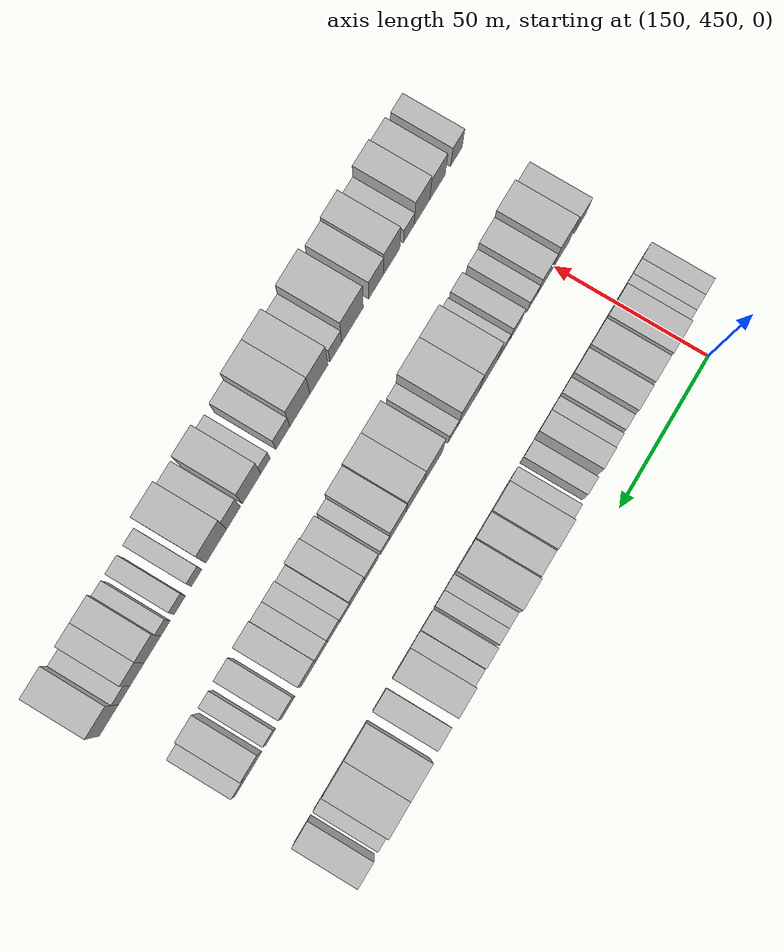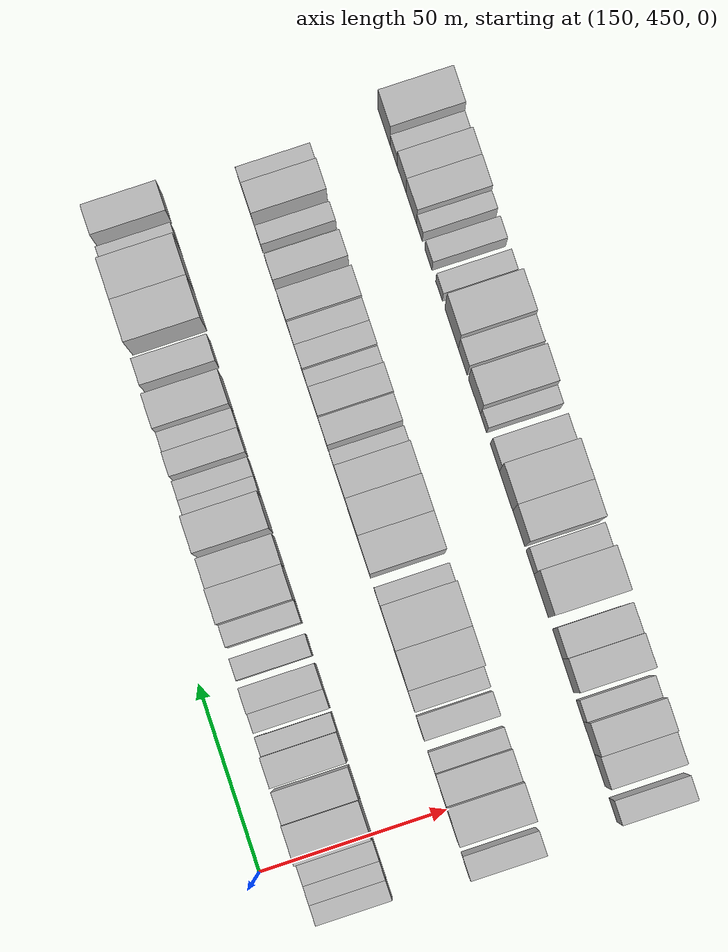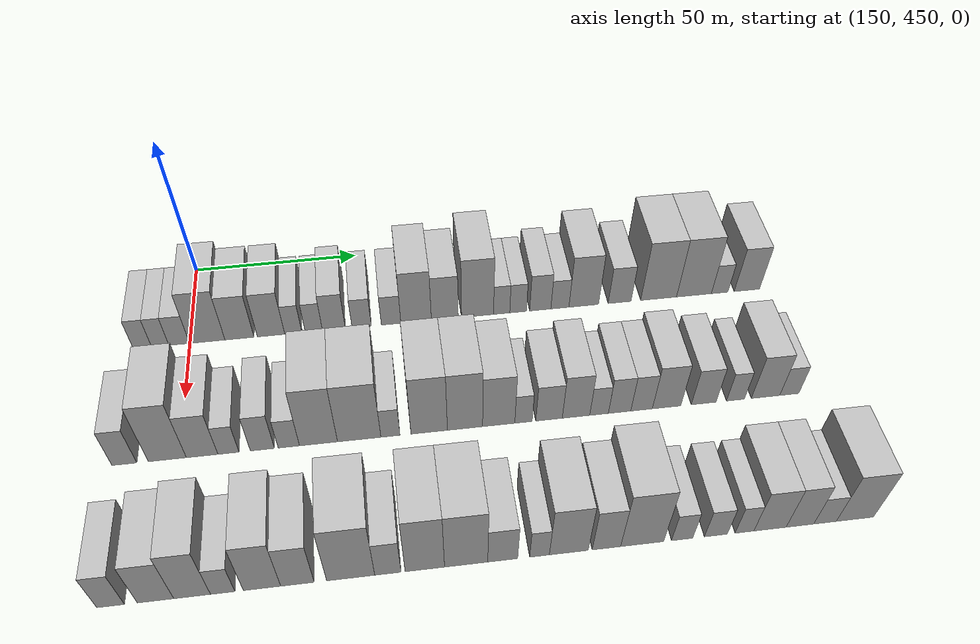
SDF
<sdf version="1.6">
 <world name="default">
  <model name="building_527">
   <static>1</static>
   <pose>170.0000 436.3362 0 0.000000 0.000000 0.000000</pose>
   <link name="link">
    <pose>0 0 6.00 0 0 0</pose>
    <collision name="collision"><geometry><box><size>20.0000 5.2763 12.0000</size></box></geometry></collision>
    <visual name="visual">
     <cast_shadows>0</cast_shadows>
     <geometry><box><size>20.0000 5.2763 12.0000</size></box></geometry>
     <material>
      <script>
       <uri>model://HANNAS_wall/materials/scripts</uri>
       <uri>model://HANNAS_wall/materials/textures</uri>
       <name>vrc/HANNAS_wall</name>
      </script>
     </material>
    </visual>
   </link>
  </model>
  <model name="building_528">
   <static>1</static>
   <pose>170.0000 441.4652 0 0.000000 0.000000 0.000000</pose>
   <link name="link">
    <pose>0 0 6.00 0 0 0</pose>
    <collision name="collision"><geometry><box><size>20.0000 4.9817 12.0000</size></box></geometry></collision>
    <visual name="visual">
     <cast_shadows>0</cast_shadows>
     <geometry><box><size>20.0000 4.9817 12.0000</size></box></geometry>
     <material>
      <script>
       <uri>model://HANNAS_wall/materials/scripts</uri>
       <uri>model://HANNAS_wall/materials/textures</uri>
       <name>vrc/HANNAS_wall</name>
      </script>
     </material>
    </visual>
   </link>
  </model>
  <model name="building_529">
   <static>1</static>
   <pose>170.0000 446.9456 0 0.000000 0.000000 0.000000</pose>
   <link name="link">
    <pose>0 0 6.00 0 0 0</pose>
    <collision name="collision"><geometry><box><size>20.0000 5.9792 12.0000</size></box></geometry></collision>
    <visual name="visual">
     <cast_shadows>0</cast_shadows>
     <geometry><box><size>20.0000 5.9792 12.0000</size></box></geometry>
     <material>
      <script>
       <uri>model://HANNAS_wall/materials/scripts</uri>
       <uri>model://HANNAS_wall/materials/textures</uri>
       <name>vrc/HANNAS_wall</name>
      </script>
     </material>
    </visual>
   </link>
  </model>
  <model name="building_530">
   <static>1</static>
   <pose>170.0000 455.0652 0 0.000000 0.000000 0.000000</pose>
   <link name="link">
    <pose>0 0 10.50 0 0 0</pose>
    <collision name="collision"><geometry><box><size>20.0000 10.2600 21.0000</size></box></geometry></collision>
    <visual name="visual">
     <cast_shadows>0</cast_shadows>
     <geometry><box><size>20.0000 10.2600 21.0000</size></box></geometry>
     <material>
      <script>
       <uri>model://HANNAS_wall/materials/scripts</uri>
       <uri>model://HANNAS_wall/materials/textures</uri>
       <name>vrc/HANNAS_wall</name>
      </script>
     </material>
    </visual>
   </link>
  </model>
  <model name="building_531">
   <static>1</static>
   <pose>170.0000 464.4266 0 0.000000 0.000000 0.000000</pose>
   <link name="link">
    <pose>0 0 9.00 0 0 0</pose>
    <collision name="collision"><geometry><box><size>20.0000 8.4628 18.0000</size></box></geometry></collision>
    <visual name="visual">
     <cast_shadows>0</cast_shadows>
     <geometry><box><size>20.0000 8.4628 18.0000</size></box></geometry>
     <material>
      <script>
       <uri>model://HANNAS_wall/materials/scripts</uri>
       <uri>model://HANNAS_wall/materials/textures</uri>
       <name>vrc/HANNAS_wall</name>
      </script>
     </material>
    </visual>
   </link>
  </model>
  <model name="building_532">
   <static>1</static>
   <pose>170.0000 473.6590 0 0.000000 0.000000 0.000000</pose>
   <link name="link">
    <pose>0 0 9.00 0 0 0</pose>
    <collision name="collision"><geometry><box><size>20.0000 8.0020 18.0000</size></box></geometry></collision>
    <visual name="visual">
     <cast_shadows>0</cast_shadows>
     <geometry><box><size>20.0000 8.0020 18.0000</size></box></geometry>
     <material>
      <script>
       <uri>model://HANNAS_wall/materials/scripts</uri>
       <uri>model://HANNAS_wall/materials/textures</uri>
       <name>vrc/HANNAS_wall</name>
      </script>
     </material>
    </visual>
   </link>
  </model>
  <model name="building_533">
   <static>1</static>
   <pose>170.0000 480.1822 0 0.000000 0.000000 0.000000</pose>
   <link name="link">
    <pose>0 0 6.00 0 0 0</pose>
    <collision name="collision"><geometry><box><size>20.0000 5.0445 12.0000</size></box></geometry></collision>
    <visual name="visual">
     <cast_shadows>0</cast_shadows>
     <geometry><box><size>20.0000 5.0445 12.0000</size></box></geometry>
     <material>
      <script>
       <uri>model://HANNAS_wall/materials/scripts</uri>
       <uri>model://HANNAS_wall/materials/textures</uri>
       <name>vrc/HANNAS_wall</name>
      </script>
     </material>
    </visual>
   </link>
  </model>
  <model name="building_534">
   <static>1</static>
   <pose>170.0000 486.2465 0 0.000000 0.000000 0.000000</pose>
   <link name="link">
    <pose>0 0 6.00 0 0 0</pose>
    <collision name="collision"><geometry><box><size>20.0000 5.0841 12.0000</size></box></geometry></collision>
    <visual name="visual">
     <cast_shadows>0</cast_shadows>
     <geometry><box><size>20.0000 5.0841 12.0000</size></box></geometry>
     <material>
      <script>
       <uri>model://HANNAS_wall/materials/scripts</uri>
       <uri>model://HANNAS_wall/materials/textures</uri>
       <name>vrc/HANNAS_wall</name>
      </script>
     </material>
    </visual>
   </link>
  </model>
  <model name="building_535">
   <static>1</static>
   <pose>170.0000 492.1793 0 0.000000 0.000000 0.000000</pose>
   <link name="link">
    <pose>0 0 7.50 0 0 0</pose>
    <collision name="collision"><geometry><box><size>20.0000 6.7814 15.0000</size></box></geometry></collision>
    <visual name="visual">
     <cast_shadows>0</cast_shadows>
     <geometry><box><size>20.0000 6.7814 15.0000</size></box></geometry>
     <material>
      <script>
       <uri>model://HANNAS_wall/materials/scripts</uri>
       <uri>model://HANNAS_wall/materials/textures</uri>
       <name>vrc/HANNAS_wall</name>
      </script>
     </material>
    </visual>
   </link>
  </model>
  <model name="building_536">
   <static>1</static>
   <pose>170.0000 500.4298 0 0.000000 0.000000 0.000000</pose>
   <link name="link">
    <pose>0 0 6.00 0 0 0</pose>
    <collision name="collision"><geometry><box><size>20.0000 5.7196 12.0000</size></box></geometry></collision>
    <visual name="visual">
     <cast_shadows>0</cast_shadows>
     <geometry><box><size>20.0000 5.7196 12.0000</size></box></geometry>
     <material>
      <script>
       <uri>model://HANNAS_wall/materials/scripts</uri>
       <uri>model://HANNAS_wall/materials/textures</uri>
       <name>vrc/HANNAS_wall</name>
      </script>
     </material>
    </visual>
   </link>
  </model>
  <model name="building_537">
   <static>1</static>
   <pose>170.0000 509.2075 0 0.000000 0.000000 0.000000</pose>
   <link name="link">
    <pose>0 0 6.00 0 0 0</pose>
    <collision name="collision"><geometry><box><size>20.0000 5.8358 12.0000</size></box></geometry></collision>
    <visual name="visual">
     <cast_shadows>0</cast_shadows>
     <geometry><box><size>20.0000 5.8358 12.0000</size></box></geometry>
     <material>
      <script>
       <uri>model://HANNAS_wall/materials/scripts</uri>
       <uri>model://HANNAS_wall/materials/textures</uri>
       <name>vrc/HANNAS_wall</name>
      </script>
     </material>
    </visual>
   </link>
  </model>
  <model name="building_538">
   <static>1</static>
   <pose>170.0000 516.7070 0 0.000000 0.000000 0.000000</pose>
   <link name="link">
    <pose>0 0 10.50 0 0 0</pose>
    <collision name="collision"><geometry><box><size>20.0000 9.1632 21.0000</size></box></geometry></collision>
    <visual name="visual">
     <cast_shadows>0</cast_shadows>
     <geometry><box><size>20.0000 9.1632 21.0000</size></box></geometry>
     <material>
      <script>
       <uri>model://HANNAS_wall/materials/scripts</uri>
       <uri>model://HANNAS_wall/materials/textures</uri>
       <name>vrc/HANNAS_wall</name>
      </script>
     </material>
    </visual>
   </link>
  </model>
  <model name="building_539">
   <static>1</static>
   <pose>170.0000 525.3419 0 0.000000 0.000000 0.000000</pose>
   <link name="link">
    <pose>0 0 9.00 0 0 0</pose>
    <collision name="collision"><geometry><box><size>20.0000 8.1066 18.0000</size></box></geometry></collision>
    <visual name="visual">
     <cast_shadows>0</cast_shadows>
     <geometry><box><size>20.0000 8.1066 18.0000</size></box></geometry>
     <material>
      <script>
       <uri>model://HANNAS_wall/materials/scripts</uri>
       <uri>model://HANNAS_wall/materials/textures</uri>
       <name>vrc/HANNAS_wall</name>
      </script>
     </material>
    </visual>
   </link>
  </model>
  <model name="building_540">
   <static>1</static>
   <pose>170.0000 535.2454 0 0.000000 0.000000 0.000000</pose>
   <link name="link">
    <pose>0 0 12.00 0 0 0</pose>
    <collision name="collision"><geometry><box><size>20.0000 9.7004 24.0000</size></box></geometry></collision>
    <visual name="visual">
     <cast_shadows>0</cast_shadows>
     <geometry><box><size>20.0000 9.7004 24.0000</size></box></geometry>
     <material>
      <script>
       <uri>model://HANNAS_wall/materials/scripts</uri>
       <uri>model://HANNAS_wall/materials/textures</uri>
       <name>vrc/HANNAS_wall</name>
      </script>
     </material>
    </visual>
   </link>
  </model>
  <model name="building_541">
   <static>1</static>
   <pose>170.0000 542.5715 0 0.000000 0.000000 0.000000</pose>
   <link name="link">
    <pose>0 0 6.00 0 0 0</pose>
    <collision name="collision"><geometry><box><size>20.0000 4.9518 12.0000</size></box></geometry></collision>
    <visual name="visual">
     <cast_shadows>0</cast_shadows>
     <geometry><box><size>20.0000 4.9518 12.0000</size></box></geometry>
     <material>
      <script>
       <uri>model://HANNAS_wall/materials/scripts</uri>
       <uri>model://HANNAS_wall/materials/textures</uri>
       <name>vrc/HANNAS_wall</name>
      </script>
     </material>
    </visual>
   </link>
  </model>
  <model name="building_542">
   <static>1</static>
   <pose>170.0000 547.5882 0 0.000000 0.000000 0.000000</pose>
   <link name="link">
    <pose>0 0 6.00 0 0 0</pose>
    <collision name="collision"><geometry><box><size>20.0000 5.0817 12.0000</size></box></geometry></collision>
    <visual name="visual">
     <cast_shadows>0</cast_shadows>
     <geometry><box><size>20.0000 5.0817 12.0000</size></box></geometry>
     <material>
      <script>
       <uri>model://HANNAS_wall/materials/scripts</uri>
       <uri>model://HANNAS_wall/materials/textures</uri>
       <name>vrc/HANNAS_wall</name>
      </script>
     </material>
    </visual>
   </link>
  </model>
  <model name="building_543">
   <static>1</static>
   <pose>170.0000 554.3826 0 0.000000 0.000000 0.000000</pose>
   <link name="link">
    <pose>0 0 7.50 0 0 0</pose>
    <collision name="collision"><geometry><box><size>20.0000 6.5073 15.0000</size></box></geometry></collision>
    <visual name="visual">
     <cast_shadows>0</cast_shadows>
     <geometry><box><size>20.0000 6.5073 15.0000</size></box></geometry>
     <material>
      <script>
       <uri>model://HANNAS_wall/materials/scripts</uri>
       <uri>model://HANNAS_wall/materials/textures</uri>
       <name>vrc/HANNAS_wall</name>
      </script>
     </material>
    </visual>
   </link>
  </model>
  <model name="building_544">
   <static>1</static>
   <pose>170.0000 560.4132 0 0.000000 0.000000 0.000000</pose>
   <link name="link">
    <pose>0 0 6.00 0 0 0</pose>
    <collision name="collision"><geometry><box><size>20.0000 5.5538 12.0000</size></box></geometry></collision>
    <visual name="visual">
     <cast_shadows>0</cast_shadows>
     <geometry><box><size>20.0000 5.5538 12.0000</size></box></geometry>
     <material>
      <script>
       <uri>model://HANNAS_wall/materials/scripts</uri>
       <uri>model://HANNAS_wall/materials/textures</uri>
       <name>vrc/HANNAS_wall</name>
      </script>
     </material>
    </visual>
   </link>
  </model>
  <model name="building_545">
   <static>1</static>
   <pose>170.0000 567.7730 0 0.000000 0.000000 0.000000</pose>
   <link name="link">
    <pose>0 0 10.50 0 0 0</pose>
    <collision name="collision"><geometry><box><size>20.0000 9.1657 21.0000</size></box></geometry></collision>
    <visual name="visual">
     <cast_shadows>0</cast_shadows>
     <geometry><box><size>20.0000 9.1657 21.0000</size></box></geometry>
     <material>
      <script>
       <uri>model://HANNAS_wall/materials/scripts</uri>
       <uri>model://HANNAS_wall/materials/textures</uri>
       <name>vrc/HANNAS_wall</name>
      </script>
     </material>
    </visual>
   </link>
  </model>
  <model name="building_546">
   <static>1</static>
   <pose>170.0000 578.9190 0 0.000000 0.000000 0.000000</pose>
   <link name="link">
    <pose>0 0 7.50 0 0 0</pose>
    <collision name="collision"><geometry><box><size>20.0000 7.1264 15.0000</size></box></geometry></collision>
    <visual name="visual">
     <cast_shadows>0</cast_shadows>
     <geometry><box><size>20.0000 7.1264 15.0000</size></box></geometry>
     <material>
      <script>
       <uri>model://HANNAS_wall/materials/scripts</uri>
       <uri>model://HANNAS_wall/materials/textures</uri>
       <name>vrc/HANNAS_wall</name>
      </script>
     </material>
    </visual>
   </link>
  </model>
  <model name="building_547">
   <static>1</static>
   <pose>170.0000 591.1005 0 0.000000 0.000000 0.000000</pose>
   <link name="link">
    <pose>0 0 12.00 0 0 0</pose>
    <collision name="collision"><geometry><box><size>20.0000 11.2366 24.0000</size></box></geometry></collision>
    <visual name="visual">
     <cast_shadows>0</cast_shadows>
     <geometry><box><size>20.0000 11.2366 24.0000</size></box></geometry>
     <material>
      <script>
       <uri>model://HANNAS_wall/materials/scripts</uri>
       <uri>model://HANNAS_wall/materials/textures</uri>
       <name>vrc/HANNAS_wall</name>
      </script>
     </material>
    </visual>
   </link>
  </model>
  <model name="building_548">
   <static>1</static>
   <pose>170.0000 602.2134 0 0.000000 0.000000 0.000000</pose>
   <link name="link">
    <pose>0 0 12.00 0 0 0</pose>
    <collision name="collision"><geometry><box><size>20.0000 10.9891 24.0000</size></box></geometry></collision>
    <visual name="visual">
     <cast_shadows>0</cast_shadows>
     <geometry><box><size>20.0000 10.9891 24.0000</size></box></geometry>
     <material>
      <script>
       <uri>model://HANNAS_wall/materials/scripts</uri>
       <uri>model://HANNAS_wall/materials/textures</uri>
       <name>vrc/HANNAS_wall</name>
      </script>
     </material>
    </visual>
   </link>
  </model>
  <model name="building_549">
   <static>1</static>
   <pose>170.0000 610.3293 0 0.000000 0.000000 0.000000</pose>
   <link name="link">
    <pose>0 0 6.00 0 0 0</pose>
    <collision name="collision"><geometry><box><size>20.0000 5.2428 12.0000</size></box></geometry></collision>
    <visual name="visual">
     <cast_shadows>0</cast_shadows>
     <geometry><box><size>20.0000 5.2428 12.0000</size></box></geometry>
     <material>
      <script>
       <uri>model://HANNAS_wall/materials/scripts</uri>
       <uri>model://HANNAS_wall/materials/textures</uri>
       <name>vrc/HANNAS_wall</name>
      </script>
     </material>
    </visual>
   </link>
  </model>
  <model name="building_550">
   <static>1</static>
   <pose>170.0000 618.9754 0 0.000000 0.000000 0.000000</pose>
   <link name="link">
    <pose>0 0 9.00 0 0 0</pose>
    <collision name="collision"><geometry><box><size>20.0000 8.0493 18.0000</size></box></geometry></collision>
    <visual name="visual">
     <cast_shadows>0</cast_shadows>
     <geometry><box><size>20.0000 8.0493 18.0000</size></box></geometry>
     <material>
      <script>
       <uri>model://HANNAS_wall/materials/scripts</uri>
       <uri>model://HANNAS_wall/materials/textures</uri>
       <name>vrc/HANNAS_wall</name>
      </script>
     </material>
    </visual>
   </link>
  </model>
  <model name="building_665">
   <static>1</static>
   <pose>210.0000 435.5412 0 0.000000 0.000000 0.000000</pose>
   <link name="link">
    <pose>0 0 7.50 0 0 0</pose>
    <collision name="collision"><geometry><box><size>20.0000 6.4576 15.0000</size></box></geometry></collision>
    <visual name="visual">
     <cast_shadows>0</cast_shadows>
     <geometry><box><size>20.0000 6.4576 15.0000</size></box></geometry>
     <material>
      <script>
       <uri>model://HANNAS_wall/materials/scripts</uri>
       <uri>model://HANNAS_wall/materials/textures</uri>
       <name>vrc/HANNAS_wall</name>
      </script>
     </material>
    </visual>
   </link>
  </model>
  <model name="building_666">
   <static>1</static>
   <pose>210.0000 446.7481 0 0.000000 0.000000 0.000000</pose>
   <link name="link">
    <pose>0 0 12.00 0 0 0</pose>
    <collision name="collision"><geometry><box><size>20.0000 9.9562 24.0000</size></box></geometry></collision>
    <visual name="visual">
     <cast_shadows>0</cast_shadows>
     <geometry><box><size>20.0000 9.9562 24.0000</size></box></geometry>
     <material>
      <script>
       <uri>model://HANNAS_wall/materials/scripts</uri>
       <uri>model://HANNAS_wall/materials/textures</uri>
       <name>vrc/HANNAS_wall</name>
      </script>
     </material>
    </visual>
   </link>
  </model>
  <model name="building_667">
   <static>1</static>
   <pose>210.0000 455.8811 0 0.000000 0.000000 0.000000</pose>
   <link name="link">
    <pose>0 0 9.00 0 0 0</pose>
    <collision name="collision"><geometry><box><size>20.0000 8.3097 18.0000</size></box></geometry></collision>
    <visual name="visual">
     <cast_shadows>0</cast_shadows>
     <geometry><box><size>20.0000 8.3097 18.0000</size></box></geometry>
     <material>
      <script>
       <uri>model://HANNAS_wall/materials/scripts</uri>
       <uri>model://HANNAS_wall/materials/textures</uri>
       <name>vrc/HANNAS_wall</name>
      </script>
     </material>
    </visual>
   </link>
  </model>
  <model name="building_668">
   <static>1</static>
   <pose>210.0000 462.8255 0 0.000000 0.000000 0.000000</pose>
   <link name="link">
    <pose>0 0 6.00 0 0 0</pose>
    <collision name="collision"><geometry><box><size>20.0000 5.5793 12.0000</size></box></geometry></collision>
    <visual name="visual">
     <cast_shadows>0</cast_shadows>
     <geometry><box><size>20.0000 5.5793 12.0000</size></box></geometry>
     <material>
      <script>
       <uri>model://HANNAS_wall/materials/scripts</uri>
       <uri>model://HANNAS_wall/materials/textures</uri>
       <name>vrc/HANNAS_wall</name>
      </script>
     </material>
    </visual>
   </link>
  </model>
  <model name="building_669">
   <static>1</static>
   <pose>210.0000 471.8212 0 0.000000 0.000000 0.000000</pose>
   <link name="link">
    <pose>0 0 7.50 0 0 0</pose>
    <collision name="collision"><geometry><box><size>20.0000 6.4121 15.0000</size></box></geometry></collision>
    <visual name="visual">
     <cast_shadows>0</cast_shadows>
     <geometry><box><size>20.0000 6.4121 15.0000</size></box></geometry>
     <material>
      <script>
       <uri>model://HANNAS_wall/materials/scripts</uri>
       <uri>model://HANNAS_wall/materials/textures</uri>
       <name>vrc/HANNAS_wall</name>
      </script>
     </material>
    </visual>
   </link>
  </model>
  <model name="building_670">
   <static>1</static>
   <pose>210.0000 478.8683 0 0.000000 0.000000 0.000000</pose>
   <link name="link">
    <pose>0 0 6.00 0 0 0</pose>
    <collision name="collision"><geometry><box><size>20.0000 5.6820 12.0000</size></box></geometry></collision>
    <visual name="visual">
     <cast_shadows>0</cast_shadows>
     <geometry><box><size>20.0000 5.6820 12.0000</size></box></geometry>
     <material>
      <script>
       <uri>model://HANNAS_wall/materials/scripts</uri>
       <uri>model://HANNAS_wall/materials/textures</uri>
       <name>vrc/HANNAS_wall</name>
      </script>
     </material>
    </visual>
   </link>
  </model>
  <model name="building_671">
   <static>1</static>
   <pose>210.0000 486.8157 0 0.000000 0.000000 0.000000</pose>
   <link name="link">
    <pose>0 0 12.00 0 0 0</pose>
    <collision name="collision"><geometry><box><size>20.0000 10.2128 24.0000</size></box></geometry></collision>
    <visual name="visual">
     <cast_shadows>0</cast_shadows>
     <geometry><box><size>20.0000 10.2128 24.0000</size></box></geometry>
     <material>
      <script>
       <uri>model://HANNAS_wall/materials/scripts</uri>
       <uri>model://HANNAS_wall/materials/textures</uri>
       <name>vrc/HANNAS_wall</name>
      </script>
     </material>
    </visual>
   </link>
  </model>
  <model name="building_672">
   <static>1</static>
   <pose>210.0000 497.7859 0 0.000000 0.000000 0.000000</pose>
   <link name="link">
    <pose>0 0 12.00 0 0 0</pose>
    <collision name="collision"><geometry><box><size>20.0000 11.7275 24.0000</size></box></geometry></collision>
    <visual name="visual">
     <cast_shadows>0</cast_shadows>
     <geometry><box><size>20.0000 11.7275 24.0000</size></box></geometry>
     <material>
      <script>
       <uri>model://HANNAS_wall/materials/scripts</uri>
       <uri>model://HANNAS_wall/materials/textures</uri>
       <name>vrc/HANNAS_wall</name>
      </script>
     </material>
    </visual>
   </link>
  </model>
  <model name="building_673">
   <static>1</static>
   <pose>210.0000 506.2365 0 0.000000 0.000000 0.000000</pose>
   <link name="link">
    <pose>0 0 6.00 0 0 0</pose>
    <collision name="collision"><geometry><box><size>20.0000 5.1736 12.0000</size></box></geometry></collision>
    <visual name="visual">
     <cast_shadows>0</cast_shadows>
     <geometry><box><size>20.0000 5.1736 12.0000</size></box></geometry>
     <material>
      <script>
       <uri>model://HANNAS_wall/materials/scripts</uri>
       <uri>model://HANNAS_wall/materials/textures</uri>
       <name>vrc/HANNAS_wall</name>
      </script>
     </material>
    </visual>
   </link>
  </model>
  <model name="building_674">
   <static>1</static>
   <pose>210.0000 516.8059 0 0.000000 0.000000 0.000000</pose>
   <link name="link">
    <pose>0 0 12.00 0 0 0</pose>
    <collision name="collision"><geometry><box><size>20.0000 9.9653 24.0000</size></box></geometry></collision>
    <visual name="visual">
     <cast_shadows>0</cast_shadows>
     <geometry><box><size>20.0000 9.9653 24.0000</size></box></geometry>
     <material>
      <script>
       <uri>model://HANNAS_wall/materials/scripts</uri>
       <uri>model://HANNAS_wall/materials/textures</uri>
       <name>vrc/HANNAS_wall</name>
      </script>
     </material>
    </visual>
   </link>
  </model>
  <model name="building_675">
   <static>1</static>
   <pose>210.0000 526.6258 0 0.000000 0.000000 0.000000</pose>
   <link name="link">
    <pose>0 0 12.00 0 0 0</pose>
    <collision name="collision"><geometry><box><size>20.0000 9.6744 24.0000</size></box></geometry></collision>
    <visual name="visual">
     <cast_shadows>0</cast_shadows>
     <geometry><box><size>20.0000 9.6744 24.0000</size></box></geometry>
     <material>
      <script>
       <uri>model://HANNAS_wall/materials/scripts</uri>
       <uri>model://HANNAS_wall/materials/textures</uri>
       <name>vrc/HANNAS_wall</name>
      </script>
     </material>
    </visual>
   </link>
  </model>
  <model name="building_676">
   <static>1</static>
   <pose>210.0000 535.9216 0 0.000000 0.000000 0.000000</pose>
   <link name="link">
    <pose>0 0 10.50 0 0 0</pose>
    <collision name="collision"><geometry><box><size>20.0000 8.9173 21.0000</size></box></geometry></collision>
    <visual name="visual">
     <cast_shadows>0</cast_shadows>
     <geometry><box><size>20.0000 8.9173 21.0000</size></box></geometry>
     <material>
      <script>
       <uri>model://HANNAS_wall/materials/scripts</uri>
       <uri>model://HANNAS_wall/materials/textures</uri>
       <name>vrc/HANNAS_wall</name>
      </script>
     </material>
    </visual>
   </link>
  </model>
  <model name="building_677">
   <static>1</static>
   <pose>210.0000 542.7958 0 0.000000 0.000000 0.000000</pose>
   <link name="link">
    <pose>0 0 6.00 0 0 0</pose>
    <collision name="collision"><geometry><box><size>20.0000 4.8312 12.0000</size></box></geometry></collision>
    <visual name="visual">
     <cast_shadows>0</cast_shadows>
     <geometry><box><size>20.0000 4.8312 12.0000</size></box></geometry>
     <material>
      <script>
       <uri>model://HANNAS_wall/materials/scripts</uri>
       <uri>model://HANNAS_wall/materials/textures</uri>
       <name>vrc/HANNAS_wall</name>
      </script>
     </material>
    </visual>
   </link>
  </model>
  <model name="building_678">
   <static>1</static>
   <pose>210.0000 549.9104 0 0.000000 0.000000 0.000000</pose>
   <link name="link">
    <pose>0 0 7.50 0 0 0</pose>
    <collision name="collision"><geometry><box><size>20.0000 7.3981 15.0000</size></box></geometry></collision>
    <visual name="visual">
     <cast_shadows>0</cast_shadows>
     <geometry><box><size>20.0000 7.3981 15.0000</size></box></geometry>
     <material>
      <script>
       <uri>model://HANNAS_wall/materials/scripts</uri>
       <uri>model://HANNAS_wall/materials/textures</uri>
       <name>vrc/HANNAS_wall</name>
      </script>
     </material>
    </visual>
   </link>
  </model>
  <model name="building_679">
   <static>1</static>
   <pose>210.0000 557.4666 0 0.000000 0.000000 0.000000</pose>
   <link name="link">
    <pose>0 0 9.00 0 0 0</pose>
    <collision name="collision"><geometry><box><size>20.0000 7.7142 18.0000</size></box></geometry></collision>
    <visual name="visual">
     <cast_shadows>0</cast_shadows>
     <geometry><box><size>20.0000 7.7142 18.0000</size></box></geometry>
     <material>
      <script>
       <uri>model://HANNAS_wall/materials/scripts</uri>
       <uri>model://HANNAS_wall/materials/textures</uri>
       <name>vrc/HANNAS_wall</name>
      </script>
     </material>
    </visual>
   </link>
  </model>
  <model name="building_680">
   <static>1</static>
   <pose>210.0000 563.9427 0 0.000000 0.000000 0.000000</pose>
   <link name="link">
    <pose>0 0 6.00 0 0 0</pose>
    <collision name="collision"><geometry><box><size>20.0000 5.2380 12.0000</size></box></geometry></collision>
    <visual name="visual">
     <cast_shadows>0</cast_shadows>
     <geometry><box><size>20.0000 5.2380 12.0000</size></box></geometry>
     <material>
      <script>
       <uri>model://HANNAS_wall/materials/scripts</uri>
       <uri>model://HANNAS_wall/materials/textures</uri>
       <name>vrc/HANNAS_wall</name>
      </script>
     </material>
    </visual>
   </link>
  </model>
  <model name="building_681">
   <static>1</static>
   <pose>210.0000 569.7324 0 0.000000 0.000000 0.000000</pose>
   <link name="link">
    <pose>0 0 7.50 0 0 0</pose>
    <collision name="collision"><geometry><box><size>20.0000 6.3413 15.0000</size></box></geometry></collision>
    <visual name="visual">
     <cast_shadows>0</cast_shadows>
     <geometry><box><size>20.0000 6.3413 15.0000</size></box></geometry>
     <material>
      <script>
       <uri>model://HANNAS_wall/materials/scripts</uri>
       <uri>model://HANNAS_wall/materials/textures</uri>
       <name>vrc/HANNAS_wall</name>
      </script>
     </material>
    </visual>
   </link>
  </model>
  <model name="building_682">
   <static>1</static>
   <pose>210.0000 575.9652 0 0.000000 0.000000 0.000000</pose>
   <link name="link">
    <pose>0 0 7.50 0 0 0</pose>
    <collision name="collision"><geometry><box><size>20.0000 6.1244 15.0000</size></box></geometry></collision>
    <visual name="visual">
     <cast_shadows>0</cast_shadows>
     <geometry><box><size>20.0000 6.1244 15.0000</size></box></geometry>
     <material>
      <script>
       <uri>model://HANNAS_wall/materials/scripts</uri>
       <uri>model://HANNAS_wall/materials/textures</uri>
       <name>vrc/HANNAS_wall</name>
      </script>
     </material>
    </visual>
   </link>
  </model>
  <model name="building_683">
   <static>1</static>
   <pose>210.0000 583.0861 0 0.000000 0.000000 0.000000</pose>
   <link name="link">
    <pose>0 0 9.00 0 0 0</pose>
    <collision name="collision"><geometry><box><size>20.0000 8.1173 18.0000</size></box></geometry></collision>
    <visual name="visual">
     <cast_shadows>0</cast_shadows>
     <geometry><box><size>20.0000 8.1173 18.0000</size></box></geometry>
     <material>
      <script>
       <uri>model://HANNAS_wall/materials/scripts</uri>
       <uri>model://HANNAS_wall/materials/textures</uri>
       <name>vrc/HANNAS_wall</name>
      </script>
     </material>
    </visual>
   </link>
  </model>
  <model name="building_684">
   <static>1</static>
   <pose>210.0000 593.7063 0 0.000000 0.000000 0.000000</pose>
   <link name="link">
    <pose>0 0 7.50 0 0 0</pose>
    <collision name="collision"><geometry><box><size>20.0000 7.1232 15.0000</size></box></geometry></collision>
    <visual name="visual">
     <cast_shadows>0</cast_shadows>
     <geometry><box><size>20.0000 7.1232 15.0000</size></box></geometry>
     <material>
      <script>
       <uri>model://HANNAS_wall/materials/scripts</uri>
       <uri>model://HANNAS_wall/materials/textures</uri>
       <name>vrc/HANNAS_wall</name>
      </script>
     </material>
    </visual>
   </link>
  </model>
  <model name="building_685">
   <static>1</static>
   <pose>210.0000 602.8549 0 0.000000 0.000000 0.000000</pose>
   <link name="link">
    <pose>0 0 6.00 0 0 0</pose>
    <collision name="collision"><geometry><box><size>20.0000 5.1739 12.0000</size></box></geometry></collision>
    <visual name="visual">
     <cast_shadows>0</cast_shadows>
     <geometry><box><size>20.0000 5.1739 12.0000</size></box></geometry>
     <material>
      <script>
       <uri>model://HANNAS_wall/materials/scripts</uri>
       <uri>model://HANNAS_wall/materials/textures</uri>
       <name>vrc/HANNAS_wall</name>
      </script>
     </material>
    </visual>
   </link>
  </model>
  <model name="building_686">
   <static>1</static>
   <pose>210.0000 611.5678 0 0.000000 0.000000 0.000000</pose>
   <link name="link">
    <pose>0 0 9.00 0 0 0</pose>
    <collision name="collision"><geometry><box><size>20.0000 8.2520 18.0000</size></box></geometry></collision>
    <visual name="visual">
     <cast_shadows>0</cast_shadows>
     <geometry><box><size>20.0000 8.2520 18.0000</size></box></geometry>
     <material>
      <script>
       <uri>model://HANNAS_wall/materials/scripts</uri>
       <uri>model://HANNAS_wall/materials/textures</uri>
       <name>vrc/HANNAS_wall</name>
      </script>
     </material>
    </visual>
   </link>
  </model>
  <model name="building_687">
   <static>1</static>
   <pose>210.0000 618.4704 0 0.000000 0.000000 0.000000</pose>
   <link name="link">
    <pose>0 0 6.00 0 0 0</pose>
    <collision name="collision"><geometry><box><size>20.0000 5.5532 12.0000</size></box></geometry></collision>
    <visual name="visual">
     <cast_shadows>0</cast_shadows>
     <geometry><box><size>20.0000 5.5532 12.0000</size></box></geometry>
     <material>
      <script>
       <uri>model://HANNAS_wall/materials/scripts</uri>
       <uri>model://HANNAS_wall/materials/textures</uri>
       <name>vrc/HANNAS_wall</name>
      </script>
     </material>
    </visual>
   </link>
  </model>
  <model name="building_813">
   <static>1</static>
   <pose>250.0000 436.6979 0 0.000000 0.000000 0.000000</pose>
   <link name="link">
    <pose>0 0 7.50 0 0 0</pose>
    <collision name="collision"><geometry><box><size>20.0000 6.4560 15.0000</size></box></geometry></collision>
    <visual name="visual">
     <cast_shadows>0</cast_shadows>
     <geometry><box><size>20.0000 6.4560 15.0000</size></box></geometry>
     <material>
      <script>
       <uri>model://HANNAS_wall/materials/scripts</uri>
       <uri>model://HANNAS_wall/materials/textures</uri>
       <name>vrc/HANNAS_wall</name>
      </script>
     </material>
    </visual>
   </link>
  </model>
  <model name="building_814">
   <static>1</static>
   <pose>250.0000 447.2101 0 0.000000 0.000000 0.000000</pose>
   <link name="link">
    <pose>0 0 9.00 0 0 0</pose>
    <collision name="collision"><geometry><box><size>20.0000 8.5685 18.0000</size></box></geometry></collision>
    <visual name="visual">
     <cast_shadows>0</cast_shadows>
     <geometry><box><size>20.0000 8.5685 18.0000</size></box></geometry>
     <material>
      <script>
       <uri>model://HANNAS_wall/materials/scripts</uri>
       <uri>model://HANNAS_wall/materials/textures</uri>
       <name>vrc/HANNAS_wall</name>
      </script>
     </material>
    </visual>
   </link>
  </model>
  <model name="building_815">
   <static>1</static>
   <pose>250.0000 455.8361 0 0.000000 0.000000 0.000000</pose>
   <link name="link">
    <pose>0 0 10.50 0 0 0</pose>
    <collision name="collision"><geometry><box><size>20.0000 8.6835 21.0000</size></box></geometry></collision>
    <visual name="visual">
     <cast_shadows>0</cast_shadows>
     <geometry><box><size>20.0000 8.6835 21.0000</size></box></geometry>
     <material>
      <script>
       <uri>model://HANNAS_wall/materials/scripts</uri>
       <uri>model://HANNAS_wall/materials/textures</uri>
       <name>vrc/HANNAS_wall</name>
      </script>
     </material>
    </visual>
   </link>
  </model>
  <model name="building_816">
   <static>1</static>
   <pose>250.0000 463.0741 0 0.000000 0.000000 0.000000</pose>
   <link name="link">
    <pose>0 0 6.00 0 0 0</pose>
    <collision name="collision"><geometry><box><size>20.0000 5.7924 12.0000</size></box></geometry></collision>
    <visual name="visual">
     <cast_shadows>0</cast_shadows>
     <geometry><box><size>20.0000 5.7924 12.0000</size></box></geometry>
     <material>
      <script>
       <uri>model://HANNAS_wall/materials/scripts</uri>
       <uri>model://HANNAS_wall/materials/textures</uri>
       <name>vrc/HANNAS_wall</name>
      </script>
     </material>
    </visual>
   </link>
  </model>
  <model name="building_817">
   <static>1</static>
   <pose>250.0000 472.4343 0 0.000000 0.000000 0.000000</pose>
   <link name="link">
    <pose>0 0 10.50 0 0 0</pose>
    <collision name="collision"><geometry><box><size>20.0000 8.9280 21.0000</size></box></geometry></collision>
    <visual name="visual">
     <cast_shadows>0</cast_shadows>
     <geometry><box><size>20.0000 8.9280 21.0000</size></box></geometry>
     <material>
      <script>
       <uri>model://HANNAS_wall/materials/scripts</uri>
       <uri>model://HANNAS_wall/materials/textures</uri>
       <name>vrc/HANNAS_wall</name>
      </script>
     </material>
    </visual>
   </link>
  </model>
  <model name="building_818">
   <static>1</static>
   <pose>250.0000 480.9314 0 0.000000 0.000000 0.000000</pose>
   <link name="link">
    <pose>0 0 9.00 0 0 0</pose>
    <collision name="collision"><geometry><box><size>20.0000 8.0661 18.0000</size></box></geometry></collision>
    <visual name="visual">
     <cast_shadows>0</cast_shadows>
     <geometry><box><size>20.0000 8.0661 18.0000</size></box></geometry>
     <material>
      <script>
       <uri>model://HANNAS_wall/materials/scripts</uri>
       <uri>model://HANNAS_wall/materials/textures</uri>
       <name>vrc/HANNAS_wall</name>
      </script>
     </material>
    </visual>
   </link>
  </model>
  <model name="building_819">
   <static>1</static>
   <pose>250.0000 493.8024 0 0.000000 0.000000 0.000000</pose>
   <link name="link">
    <pose>0 0 12.00 0 0 0</pose>
    <collision name="collision"><geometry><box><size>20.0000 11.6758 24.0000</size></box></geometry></collision>
    <visual name="visual">
     <cast_shadows>0</cast_shadows>
     <geometry><box><size>20.0000 11.6758 24.0000</size></box></geometry>
     <material>
      <script>
       <uri>model://HANNAS_wall/materials/scripts</uri>
       <uri>model://HANNAS_wall/materials/textures</uri>
       <name>vrc/HANNAS_wall</name>
      </script>
     </material>
    </visual>
   </link>
  </model>
  <model name="building_820">
   <static>1</static>
   <pose>250.0000 502.8565 0 0.000000 0.000000 0.000000</pose>
   <link name="link">
    <pose>0 0 7.50 0 0 0</pose>
    <collision name="collision"><geometry><box><size>20.0000 6.4324 15.0000</size></box></geometry></collision>
    <visual name="visual">
     <cast_shadows>0</cast_shadows>
     <geometry><box><size>20.0000 6.4324 15.0000</size></box></geometry>
     <material>
      <script>
       <uri>model://HANNAS_wall/materials/scripts</uri>
       <uri>model://HANNAS_wall/materials/textures</uri>
       <name>vrc/HANNAS_wall</name>
      </script>
     </material>
    </visual>
   </link>
  </model>
  <model name="building_821">
   <static>1</static>
   <pose>250.0000 511.9110 0 0.000000 0.000000 0.000000</pose>
   <link name="link">
    <pose>0 0 12.00 0 0 0</pose>
    <collision name="collision"><geometry><box><size>20.0000 9.6768 24.0000</size></box></geometry></collision>
    <visual name="visual">
     <cast_shadows>0</cast_shadows>
     <geometry><box><size>20.0000 9.6768 24.0000</size></box></geometry>
     <material>
      <script>
       <uri>model://HANNAS_wall/materials/scripts</uri>
       <uri>model://HANNAS_wall/materials/textures</uri>
       <name>vrc/HANNAS_wall</name>
      </script>
     </material>
    </visual>
   </link>
  </model>
  <model name="building_822">
   <static>1</static>
   <pose>250.0000 522.0930 0 0.000000 0.000000 0.000000</pose>
   <link name="link">
    <pose>0 0 12.00 0 0 0</pose>
    <collision name="collision"><geometry><box><size>20.0000 10.6872 24.0000</size></box></geometry></collision>
    <visual name="visual">
     <cast_shadows>0</cast_shadows>
     <geometry><box><size>20.0000 10.6872 24.0000</size></box></geometry>
     <material>
      <script>
       <uri>model://HANNAS_wall/materials/scripts</uri>
       <uri>model://HANNAS_wall/materials/textures</uri>
       <name>vrc/HANNAS_wall</name>
      </script>
     </material>
    </visual>
   </link>
  </model>
  <model name="building_823">
   <static>1</static>
   <pose>250.0000 531.1658 0 0.000000 0.000000 0.000000</pose>
   <link name="link">
    <pose>0 0 7.50 0 0 0</pose>
    <collision name="collision"><geometry><box><size>20.0000 7.4584 15.0000</size></box></geometry></collision>
    <visual name="visual">
     <cast_shadows>0</cast_shadows>
     <geometry><box><size>20.0000 7.4584 15.0000</size></box></geometry>
     <material>
      <script>
       <uri>model://HANNAS_wall/materials/scripts</uri>
       <uri>model://HANNAS_wall/materials/textures</uri>
       <name>vrc/HANNAS_wall</name>
      </script>
     </material>
    </visual>
   </link>
  </model>
  <model name="building_824">
   <static>1</static>
   <pose>250.0000 540.3570 0 0.000000 0.000000 0.000000</pose>
   <link name="link">
    <pose>0 0 6.00 0 0 0</pose>
    <collision name="collision"><geometry><box><size>20.0000 4.9238 12.0000</size></box></geometry></collision>
    <visual name="visual">
     <cast_shadows>0</cast_shadows>
     <geometry><box><size>20.0000 4.9238 12.0000</size></box></geometry>
     <material>
      <script>
       <uri>model://HANNAS_wall/materials/scripts</uri>
       <uri>model://HANNAS_wall/materials/textures</uri>
       <name>vrc/HANNAS_wall</name>
      </script>
     </material>
    </visual>
   </link>
  </model>
  <model name="building_825">
   <static>1</static>
   <pose>250.0000 547.7240 0 0.000000 0.000000 0.000000</pose>
   <link name="link">
    <pose>0 0 10.50 0 0 0</pose>
    <collision name="collision"><geometry><box><size>20.0000 9.8102 21.0000</size></box></geometry></collision>
    <visual name="visual">
     <cast_shadows>0</cast_shadows>
     <geometry><box><size>20.0000 9.8102 21.0000</size></box></geometry>
     <material>
      <script>
       <uri>model://HANNAS_wall/materials/scripts</uri>
       <uri>model://HANNAS_wall/materials/textures</uri>
       <name>vrc/HANNAS_wall</name>
      </script>
     </material>
    </visual>
   </link>
  </model>
  <model name="building_826">
   <static>1</static>
   <pose>250.0000 557.2345 0 0.000000 0.000000 0.000000</pose>
   <link name="link">
    <pose>0 0 9.00 0 0 0</pose>
    <collision name="collision"><geometry><box><size>20.0000 7.2109 18.0000</size></box></geometry></collision>
    <visual name="visual">
     <cast_shadows>0</cast_shadows>
     <geometry><box><size>20.0000 7.2109 18.0000</size></box></geometry>
     <material>
      <script>
       <uri>model://HANNAS_wall/materials/scripts</uri>
       <uri>model://HANNAS_wall/materials/textures</uri>
       <name>vrc/HANNAS_wall</name>
      </script>
     </material>
    </visual>
   </link>
  </model>
  <model name="building_827">
   <static>1</static>
   <pose>250.0000 566.3378 0 0.000000 0.000000 0.000000</pose>
   <link name="link">
    <pose>0 0 12.00 0 0 0</pose>
    <collision name="collision"><geometry><box><size>20.0000 10.9959 24.0000</size></box></geometry></collision>
    <visual name="visual">
     <cast_shadows>0</cast_shadows>
     <geometry><box><size>20.0000 10.9959 24.0000</size></box></geometry>
     <material>
      <script>
       <uri>model://HANNAS_wall/materials/scripts</uri>
       <uri>model://HANNAS_wall/materials/textures</uri>
       <name>vrc/HANNAS_wall</name>
      </script>
     </material>
    </visual>
   </link>
  </model>
  <model name="building_828">
   <static>1</static>
   <pose>250.0000 576.5655 0 0.000000 0.000000 0.000000</pose>
   <link name="link">
    <pose>0 0 6.00 0 0 0</pose>
    <collision name="collision"><geometry><box><size>20.0000 5.4593 12.0000</size></box></geometry></collision>
    <visual name="visual">
     <cast_shadows>0</cast_shadows>
     <geometry><box><size>20.0000 5.4593 12.0000</size></box></geometry>
     <material>
      <script>
       <uri>model://HANNAS_wall/materials/scripts</uri>
       <uri>model://HANNAS_wall/materials/textures</uri>
       <name>vrc/HANNAS_wall</name>
      </script>
     </material>
    </visual>
   </link>
  </model>
  <model name="building_829">
   <static>1</static>
   <pose>250.0000 585.2661 0 0.000000 0.000000 0.000000</pose>
   <link name="link">
    <pose>0 0 6.00 0 0 0</pose>
    <collision name="collision"><geometry><box><size>20.0000 5.9419 12.0000</size></box></geometry></collision>
    <visual name="visual">
     <cast_shadows>0</cast_shadows>
     <geometry><box><size>20.0000 5.9419 12.0000</size></box></geometry>
     <material>
      <script>
       <uri>model://HANNAS_wall/materials/scripts</uri>
       <uri>model://HANNAS_wall/materials/textures</uri>
       <name>vrc/HANNAS_wall</name>
      </script>
     </material>
    </visual>
   </link>
  </model>
  <model name="building_830">
   <static>1</static>
   <pose>250.0000 592.6727 0 0.000000 0.000000 0.000000</pose>
   <link name="link">
    <pose>0 0 6.00 0 0 0</pose>
    <collision name="collision"><geometry><box><size>20.0000 4.8712 12.0000</size></box></geometry></collision>
    <visual name="visual">
     <cast_shadows>0</cast_shadows>
     <geometry><box><size>20.0000 4.8712 12.0000</size></box></geometry>
     <material>
      <script>
       <uri>model://HANNAS_wall/materials/scripts</uri>
       <uri>model://HANNAS_wall/materials/textures</uri>
       <name>vrc/HANNAS_wall</name>
      </script>
     </material>
    </visual>
   </link>
  </model>
  <model name="building_831">
   <static>1</static>
   <pose>250.0000 599.3443 0 0.000000 0.000000 0.000000</pose>
   <link name="link">
    <pose>0 0 9.00 0 0 0</pose>
    <collision name="collision"><geometry><box><size>20.0000 8.4720 18.0000</size></box></geometry></collision>
    <visual name="visual">
     <cast_shadows>0</cast_shadows>
     <geometry><box><size>20.0000 8.4720 18.0000</size></box></geometry>
     <material>
      <script>
       <uri>model://HANNAS_wall/materials/scripts</uri>
       <uri>model://HANNAS_wall/materials/textures</uri>
       <name>vrc/HANNAS_wall</name>
      </script>
     </material>
    </visual>
   </link>
  </model>
  <model name="building_832">
   <static>1</static>
   <pose>250.0000 607.2079 0 0.000000 0.000000 0.000000</pose>
   <link name="link">
    <pose>0 0 9.00 0 0 0</pose>
    <collision name="collision"><geometry><box><size>20.0000 7.2553 18.0000</size></box></geometry></collision>
    <visual name="visual">
     <cast_shadows>0</cast_shadows>
     <geometry><box><size>20.0000 7.2553 18.0000</size></box></geometry>
     <material>
      <script>
       <uri>model://HANNAS_wall/materials/scripts</uri>
       <uri>model://HANNAS_wall/materials/textures</uri>
       <name>vrc/HANNAS_wall</name>
      </script>
     </material>
    </visual>
   </link>
  </model>
  <model name="building_833">
   <static>1</static>
   <pose>250.0000 613.7993 0 0.000000 0.000000 0.000000</pose>
   <link name="link">
    <pose>0 0 6.00 0 0 0</pose>
    <collision name="collision"><geometry><box><size>20.0000 5.9275 12.0000</size></box></geometry></collision>
    <visual name="visual">
     <cast_shadows>0</cast_shadows>
     <geometry><box><size>20.0000 5.9275 12.0000</size></box></geometry>
     <material>
      <script>
       <uri>model://HANNAS_wall/materials/scripts</uri>
       <uri>model://HANNAS_wall/materials/textures</uri>
       <name>vrc/HANNAS_wall</name>
      </script>
     </material>
    </visual>
   </link>
  </model>
  <model name="building_834">
   <static>1</static>
   <pose>250.0000 621.6978 0 0.000000 0.000000 0.000000</pose>
   <link name="link">
    <pose>0 0 10.50 0 0 0</pose>
    <collision name="collision"><geometry><box><size>20.0000 9.8694 21.0000</size></box></geometry></collision>
    <visual name="visual">
     <cast_shadows>0</cast_shadows>
     <geometry><box><size>20.0000 9.8694 21.0000</size></box></geometry>
     <material>
      <script>
       <uri>model://HANNAS_wall/materials/scripts</uri>
       <uri>model://HANNAS_wall/materials/textures</uri>
       <name>vrc/HANNAS_wall</name>
      </script>
     </material>
    </visual>
   </link>
  </model>
 </world>
</sdf>
